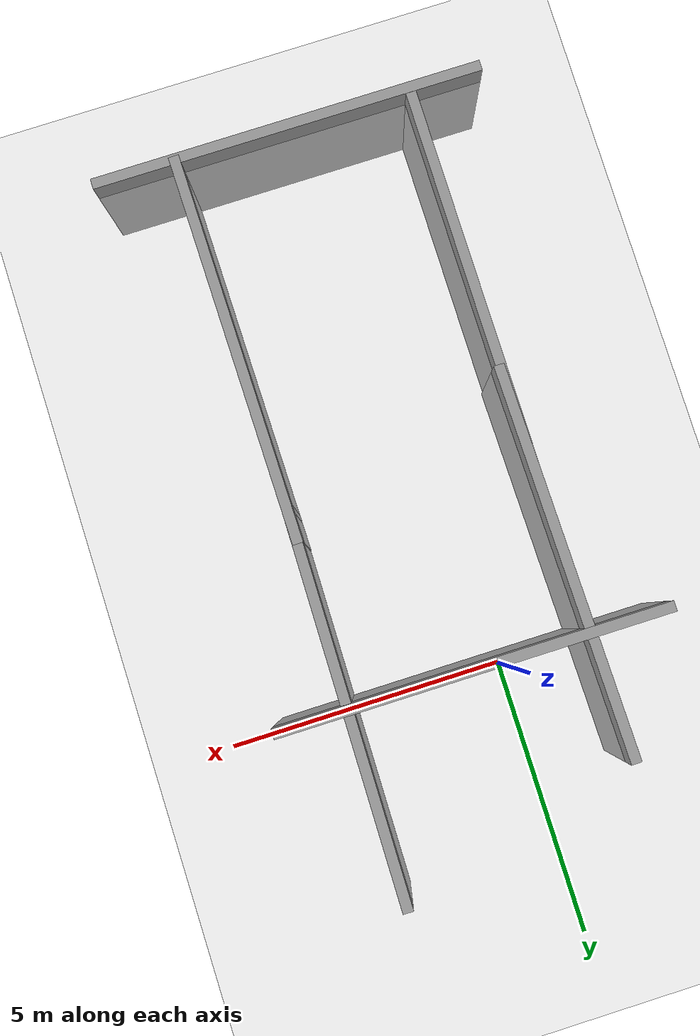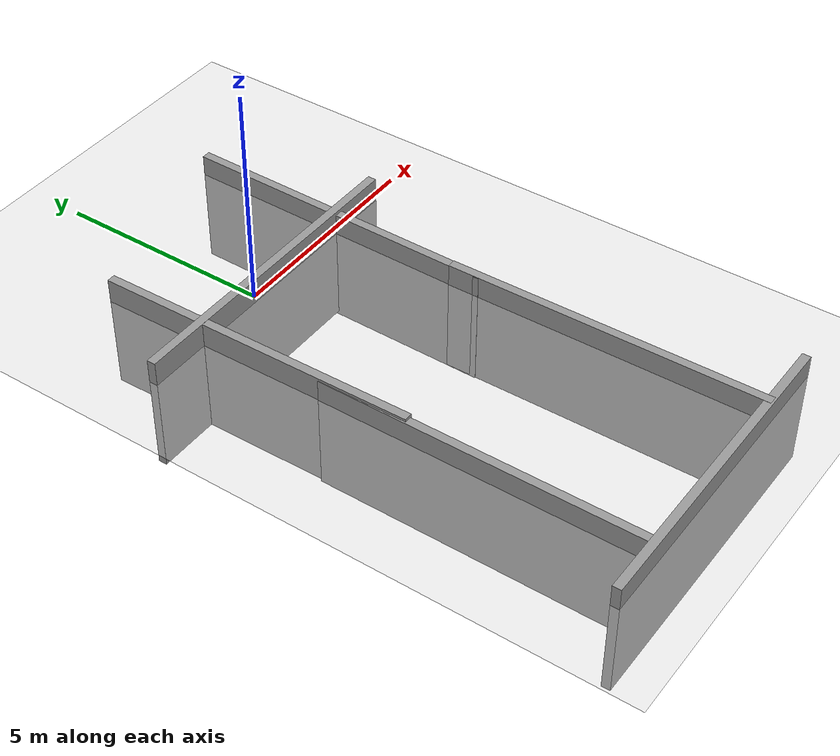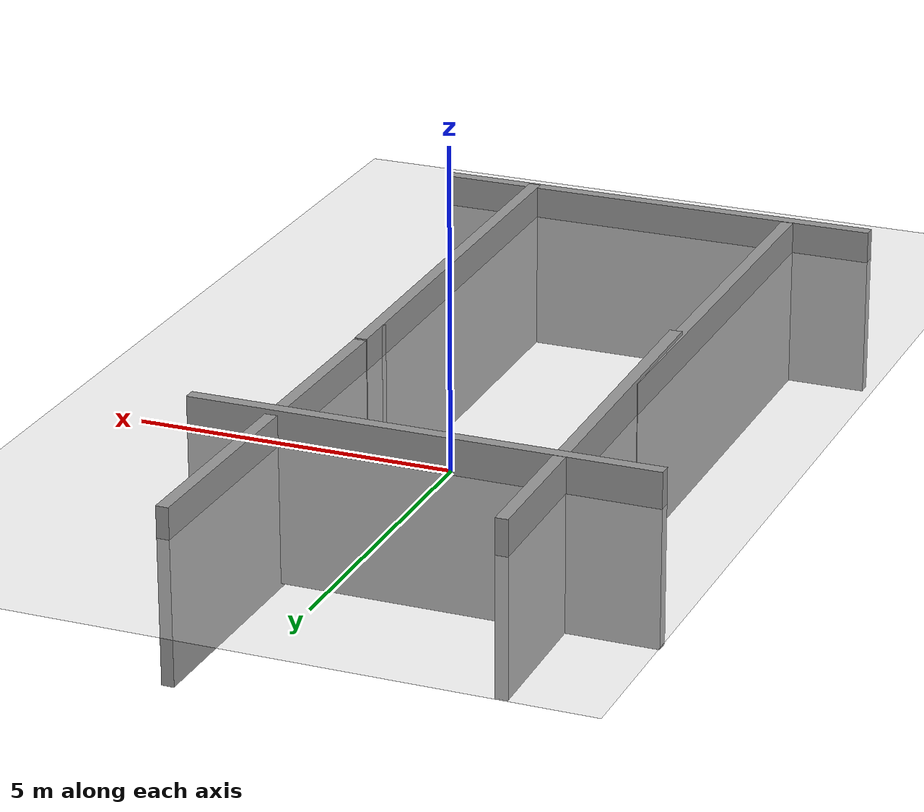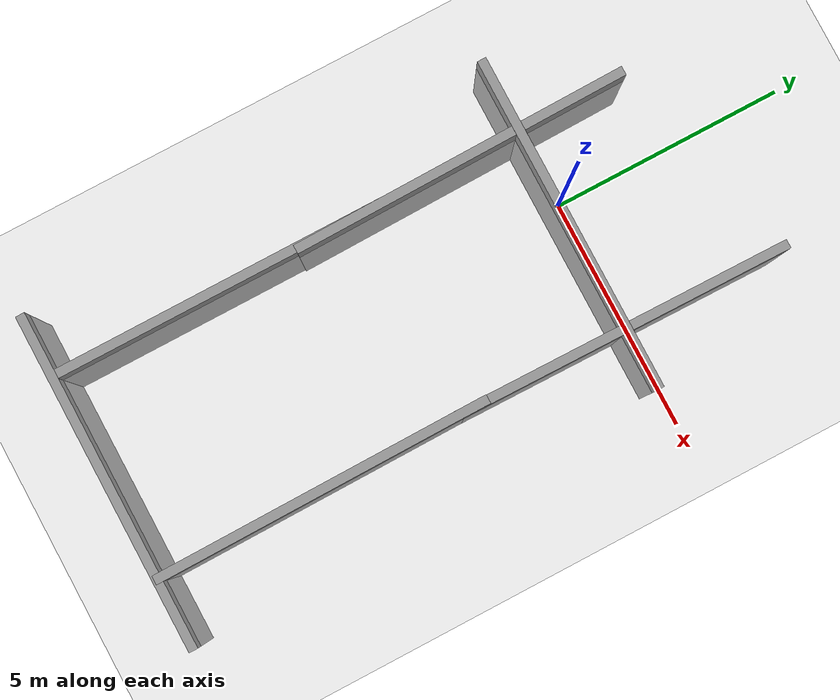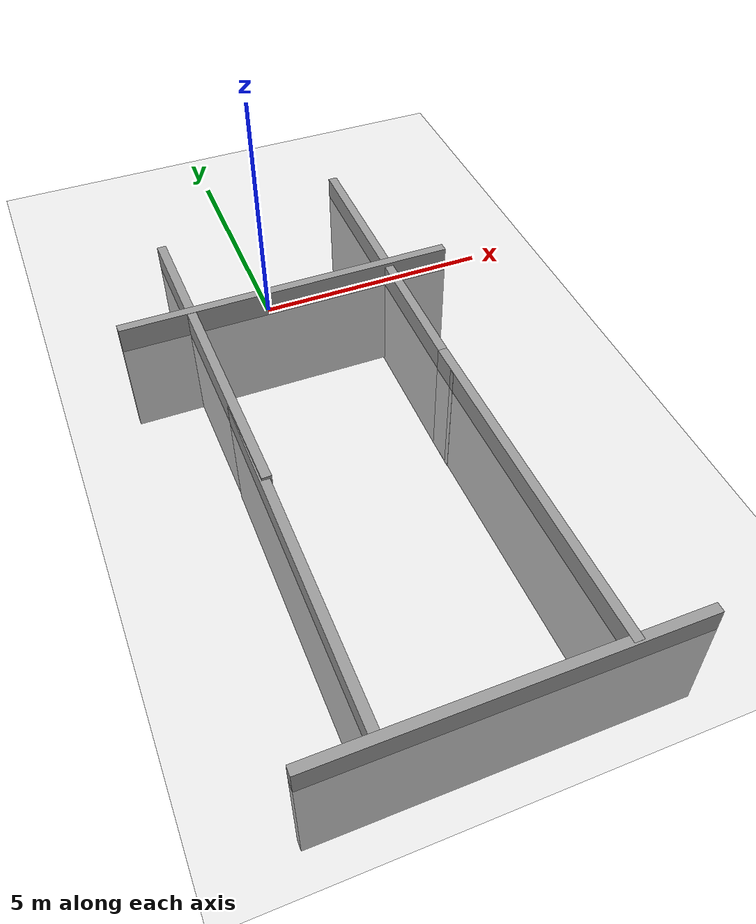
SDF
<sdf version='1.7'>
  <world name='default'>
    <plugin name='set_entity_state_plugin' filename='libset_entity_state.so'>
      <robot_name>my_robot</robot_name>
    </plugin>
    <plugin name='gazebo_ros_state' filename='libgazebo_ros_state.so'>
      <ros>
        <argument>model_states:=model_states_demo</argument>
      </ros>
      <update_rate>1.0</update_rate>
    </plugin>
    <light name='sun' type='directional'>
      <cast_shadows>1</cast_shadows>
      <pose>0 0 10 0 -0 0</pose>
      <diffuse>0.8 0.8 0.8 1</diffuse>
      <specular>0.2 0.2 0.2 1</specular>
      <attenuation>
        <range>1000</range>
        <constant>0.9</constant>
        <linear>0.01</linear>
        <quadratic>0.001</quadratic>
      </attenuation>
      <direction>-0.5 0.1 -0.9</direction>
      <spot>
        <inner_angle>0</inner_angle>
        <outer_angle>0</outer_angle>
        <falloff>0</falloff>
      </spot>
    </light>
    <model name='ground_plane'>
      <static>1</static>
      <link name='link'>
        <collision name='collision'>
          <geometry>
            <plane>
              <normal>0 0 1</normal>
              <size>100 100</size>
            </plane>
          </geometry>
          <surface>
            <friction>
              <ode>
                <mu>100</mu>
                <mu2>50</mu2>
              </ode>
              <torsional>
                <ode/>
              </torsional>
            </friction>
            <contact>
              <ode/>
            </contact>
            <bounce/>
          </surface>
          <max_contacts>10</max_contacts>
        </collision>
        <visual name='visual'>
          <cast_shadows>0</cast_shadows>
          <geometry>
            <plane>
              <normal>0 0 1</normal>
              <size>100 100</size>
            </plane>
          </geometry>
          <material>
            <script>
              <uri>file://media/materials/scripts/gazebo.material</uri>
              <name>Gazebo/Grey</name>
            </script>
          </material>
        </visual>
        <self_collide>0</self_collide>
        <enable_wind>0</enable_wind>
        <kinematic>0</kinematic>
      </link>
    </model>
    <gravity>0 0 -9.8</gravity>
    <magnetic_field>6e-06 2.3e-05 -4.2e-05</magnetic_field>
    <atmosphere type='adiabatic'/>
    <physics type='ode'>
      <max_step_size>0.002</max_step_size>
      <real_time_factor>5</real_time_factor>
      <real_time_update_rate>1500</real_time_update_rate>
      <!-- ODE-specific physics parameters for stability -->
      <ode>
        <solver>
          <type>quick</type>
          <iters>50</iters>
          <sor>1.3</sor>
        </solver>
        <constraints>
          <cfm>0.0</cfm>
          <erp>0.2</erp>
          <contact_max_correcting_vel>100.0</contact_max_correcting_vel>
          <contact_surface_layer>0.001</contact_surface_layer>
        </constraints>
      </ode>
    </physics>
    <scene>
      <ambient>0.4 0.4 0.4 1</ambient>
      <background>0.7 0.7 0.7 1</background>
      <shadows>1</shadows>
    </scene>
    <wind/>
    <spherical_coordinates>
      <surface_model>EARTH_WGS84</surface_model>
      <latitude_deg>0</latitude_deg>
      <longitude_deg>0</longitude_deg>
      <elevation>0</elevation>
      <heading_deg>0</heading_deg>
    </spherical_coordinates>
    <model name='grey_wall'>
      <static>1</static>
      <link name='link'>
        <pose>0 0 1.4 0 -0 0</pose>
        <collision name='collision'>
          <geometry>
            <box>
              <size>7.5 0.2 2.8</size>
            </box>
          </geometry>
          <max_contacts>10</max_contacts>
          <surface>
            <contact>
              <ode/>
            </contact>
            <bounce/>
            <friction>
              <torsional>
                <ode/>
              </torsional>
              <ode/>
            </friction>
          </surface>
        </collision>
        <visual name='visual'>
          <cast_shadows>0</cast_shadows>
          <geometry>
            <box>
              <size>7.5 0.2 2.8</size>
            </box>
          </geometry>
          <material>
            <script>
              <uri>model://grey_wall/materials/scripts</uri>
              <uri>model://grey_wall/materials/textures</uri>
              <name>vrc/grey_wall</name>
            </script>
          </material>
        </visual>
        <self_collide>0</self_collide>
        <enable_wind>0</enable_wind>
        <kinematic>0</kinematic>
      </link>
      <pose>0.690637 -10.5598 -2.29761 0 -0 0</pose>
    </model>
    <model name='grey_wall_0'>
      <static>1</static>
      <link name='link'>
        <pose>0 0 1.4 0 -0 0</pose>
        <collision name='collision'>
          <geometry>
            <box>
              <size>7.5 0.2 2.8</size>
            </box>
          </geometry>
          <max_contacts>10</max_contacts>
          <surface>
            <contact>
              <ode/>
            </contact>
            <bounce/>
            <friction>
              <torsional>
                <ode/>
              </torsional>
              <ode/>
            </friction>
          </surface>
        </collision>
        <visual name='visual'>
          <cast_shadows>0</cast_shadows>
          <geometry>
            <box>
              <size>7.5 0.2 2.8</size>
            </box>
          </geometry>
          <material>
            <script>
              <uri>model://grey_wall/materials/scripts</uri>
              <uri>model://grey_wall/materials/textures</uri>
              <name>vrc/grey_wall</name>
            </script>
          </material>
        </visual>
        <self_collide>0</self_collide>
        <enable_wind>0</enable_wind>
        <kinematic>0</kinematic>
      </link>
      <pose>-1.67186 -6.76607 -2.30262 0 0 -1.57009</pose>
    </model>
    <model name='grey_wall_1'>
      <static>1</static>
      <link name='link'>
        <pose>0 0 1.4 0 -0 0</pose>
        <collision name='collision'>
          <geometry>
            <box>
              <size>7.5 0.2 2.8</size>
            </box>
          </geometry>
          <max_contacts>10</max_contacts>
          <surface>
            <contact>
              <ode/>
            </contact>
            <bounce/>
            <friction>
              <torsional>
                <ode/>
              </torsional>
              <ode/>
            </friction>
          </surface>
        </collision>
        <visual name='visual'>
          <cast_shadows>0</cast_shadows>
          <geometry>
            <box>
              <size>7.5 0.2 2.8</size>
            </box>
          </geometry>
          <material>
            <script>
              <uri>model://grey_wall/materials/scripts</uri>
              <uri>model://grey_wall/materials/textures</uri>
              <name>vrc/grey_wall</name>
            </script>
          </material>
        </visual>
        <self_collide>0</self_collide>
        <enable_wind>0</enable_wind>
        <kinematic>0</kinematic>
      </link>
      <pose>0.466494 -0.028484 -2.23981 0 -0 0</pose>
    </model>
    <model name='grey_wall_2'>
      <static>1</static>
      <link name='link'>
        <pose>0 0 1.4 0 -0 0</pose>
        <collision name='collision'>
          <geometry>
            <box>
              <size>7.5 0.2 2.8</size>
            </box>
          </geometry>
          <max_contacts>10</max_contacts>
          <surface>
            <contact>
              <ode/>
            </contact>
            <bounce/>
            <friction>
              <torsional>
                <ode/>
              </torsional>
              <ode/>
            </friction>
          </surface>
        </collision>
        <visual name='visual'>
          <cast_shadows>0</cast_shadows>
          <geometry>
            <box>
              <size>7.5 0.2 2.8</size>
            </box>
          </geometry>
          <material>
            <script>
              <uri>model://grey_wall/materials/scripts</uri>
              <uri>model://grey_wall/materials/textures</uri>
              <name>vrc/grey_wall</name>
            </script>
          </material>
        </visual>
        <self_collide>0</self_collide>
        <enable_wind>0</enable_wind>
        <kinematic>0</kinematic>
      </link>
      <pose>2.82711 -6.8655 -2.29691 0 0 -1.56146</pose>
    </model>
    <model name='grey_wall_3'>
      <static>1</static>
      <link name='link'>
        <pose>0 0 1.4 0 -0 0</pose>
        <collision name='collision'>
          <geometry>
            <box>
              <size>7.5 0.2 2.8</size>
            </box>
          </geometry>
          <max_contacts>10</max_contacts>
          <surface>
            <contact>
              <ode/>
            </contact>
            <bounce/>
            <friction>
              <torsional>
                <ode/>
              </torsional>
              <ode/>
            </friction>
          </surface>
        </collision>
        <visual name='visual'>
          <cast_shadows>0</cast_shadows>
          <geometry>
            <box>
              <size>7.5 0.2 2.8</size>
            </box>
          </geometry>
          <material>
            <script>
              <uri>model://grey_wall/materials/scripts</uri>
              <uri>model://grey_wall/materials/textures</uri>
              <name>vrc/grey_wall</name>
            </script>
          </material>
        </visual>
        <self_collide>0</self_collide>
        <enable_wind>0</enable_wind>
        <kinematic>0</kinematic>
      </link>
      <pose>2.83211 -0.109664 -2.31846 0 0 -1.58035</pose>
    </model>
    <model name='grey_wall_4'>
      <static>1</static>
      <link name='link'>
        <pose>0 0 1.4 0 -0 0</pose>
        <collision name='collision'>
          <geometry>
            <box>
              <size>7.5 0.2 2.8</size>
            </box>
          </geometry>
          <max_contacts>10</max_contacts>
          <surface>
            <contact>
              <ode/>
            </contact>
            <bounce/>
            <friction>
              <torsional>
                <ode/>
              </torsional>
              <ode/>
            </friction>
          </surface>
        </collision>
        <visual name='visual'>
          <cast_shadows>0</cast_shadows>
          <geometry>
            <box>
              <size>7.5 0.2 2.8</size>
            </box>
          </geometry>
          <material>
            <script>
              <uri>model://grey_wall/materials/scripts</uri>
              <uri>model://grey_wall/materials/textures</uri>
              <name>vrc/grey_wall</name>
            </script>
          </material>
        </visual>
        <self_collide>0</self_collide>
        <enable_wind>0</enable_wind>
        <kinematic>0</kinematic>
      </link>
      <pose>-1.69032 -1.35985 -2.24309 0 0 -1.5555</pose>
    </model>

    <gui fullscreen='0'>
      <camera name='user_camera'>
        <pose>6.24905 -2.38144 12.46 0 1.0338 3.06644</pose>
        <view_controller>orbit</view_controller>
        <projection_type>perspective</projection_type>
      </camera>
    </gui>
  </world>
</sdf>
